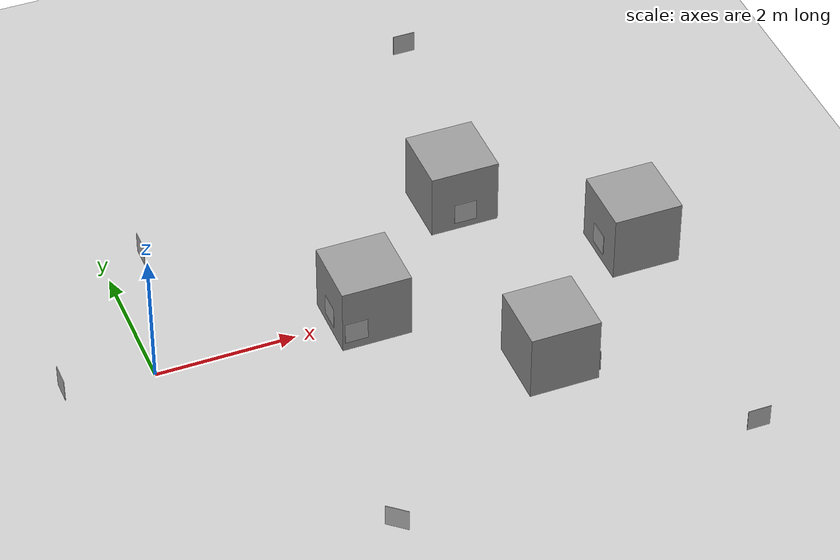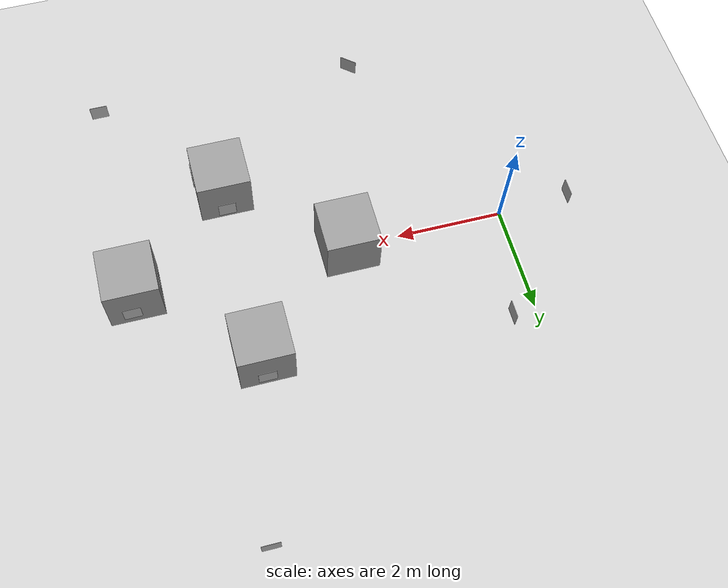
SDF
<sdf version="1.6">
 <world name="default">
  <light name="sun" type="directional">
   <pose>0 0 10 0 -0 0</pose>
   <diffuse>0.8 0.8 0.8 1</diffuse>
   <specular>0.2 0.2 0.2 1</specular>
   <attenuation>
    <range>1000</range>
    <constant>0.9</constant>
    <linear>0.01</linear>
    <quadratic>0.001</quadratic>
   </attenuation>
   <direction>-0.5 0.1 -0.9</direction>
  </light>
  <model name="ground_plane">
   <static>1</static>
   <link name="link">
    <collision name="collision">
     <geometry><plane><normal>0 0 1</normal><size>100 100</size></plane></geometry>
     <surface><friction><ode><mu>100</mu><mu2>50</mu2></ode></friction></surface>
    </collision>
    <visual name="visual">
     <cast_shadows>0</cast_shadows>
     <geometry><plane><normal>0 0 1</normal><size>100 100</size></plane></geometry>
     <material>
      <script><uri>file://media/materials/scripts/gazebo.material</uri><name>Gazebo/Grey</name></script>
     </material>
    </visual>
   </link>
  </model>
  <gravity>0 0 -9.8</gravity>
  <magnetic_field>6e-06 2.3e-05 -4.2e-05</magnetic_field>
  <atmosphere type="adiabatic"/>
  <physics name="default_physics" default="0" type="ode">
   <max_step_size>0.001</max_step_size>
   <real_time_factor>1</real_time_factor>
   <real_time_update_rate>1000</real_time_update_rate>
  </physics>
  <scene><ambient>0.4 0.4 0.4 1</ambient><background>0.7 0.7 0.7 1</background><shadows>1</shadows></scene>
  <audio><device>default</device></audio>
  <spherical_coordinates>
   <surface_model>EARTH_WGS84</surface_model>
   <latitude_deg>0</latitude_deg>
   <longitude_deg>0</longitude_deg>
   <elevation>0</elevation>
   <heading_deg>0</heading_deg>
  </spherical_coordinates>
  <model name="unit_box">
   <pose>3.00001 3e-06 0.5 -0 -0 -5e-06</pose>
   <link name="link">
    <inertial>
     <mass>1</mass>
     <inertia>
      <ixx>0.166667</ixx>
      <ixy>0</ixy>
      <ixz>0</ixz>
      <iyy>0.166667</iyy>
      <iyz>0</iyz>
      <izz>0.166667</izz>
     </inertia>
    </inertial>
    <collision name="collision"><geometry><box><size>1 1 1</size></box></geometry></collision>
    <visual name="visual">
     <geometry><box><size>1 1 1</size></box></geometry>
     <material>
      <script><name>Gazebo/Grey</name><uri>file://media/materials/scripts/gazebo.material</uri></script>
     </material>
    </visual>
   </link>
  </model>
  <model name="unit_box_0">
   <pose>5.00001 1.75001 0.5 -0 -0 -5e-06</pose>
   <link name="link">
    <inertial>
     <mass>1</mass>
     <inertia>
      <ixx>0.166667</ixx>
      <ixy>0</ixy>
      <ixz>0</ixz>
      <iyy>0.166667</iyy>
      <iyz>0</iyz>
      <izz>0.166667</izz>
     </inertia>
    </inertial>
    <collision name="collision"><geometry><box><size>1 1 1</size></box></geometry></collision>
    <visual name="visual">
     <geometry><box><size>1 1 1</size></box></geometry>
     <material>
      <script><name>Gazebo/Grey</name><uri>file://media/materials/scripts/gazebo.material</uri></script>
     </material>
    </visual>
   </link>
  </model>
  <model name="unit_box_1">
   <pose>7.00001 3e-06 0.5 -0 -0 -5e-06</pose>
   <link name="link">
    <inertial>
     <mass>1</mass>
     <inertia>
      <ixx>0.166667</ixx>
      <ixy>0</ixy>
      <ixz>0</ixz>
      <iyy>0.166667</iyy>
      <iyz>0</iyz>
      <izz>0.166667</izz>
     </inertia>
    </inertial>
    <collision name="collision"><geometry><box><size>1 1 1</size></box></geometry></collision>
    <visual name="visual">
     <geometry><box><size>1 1 1</size></box></geometry>
     <material>
      <script><name>Gazebo/Grey</name><uri>file://media/materials/scripts/gazebo.material</uri></script>
     </material>
    </visual>
   </link>
  </model>
  <model name="unit_box_0_clone">
   <pose>5.00001 -1.75002 0.5 -0 -0 -5e-06</pose>
   <link name="link">
    <inertial>
     <mass>1</mass>
     <inertia>
      <ixx>0.166667</ixx>
      <ixy>0</ixy>
      <ixz>0</ixz>
      <iyy>0.166667</iyy>
      <iyz>0</iyz>
      <izz>0.166667</izz>
     </inertia>
    </inertial>
    <collision name="collision"><geometry><box><size>1 1 1</size></box></geometry></collision>
    <visual name="visual">
     <geometry><box><size>1 1 1</size></box></geometry>
     <material>
      <script><name>Gazebo/Grey</name><uri>file://media/materials/scripts/gazebo.material</uri></script>
     </material>
    </visual>
   </link>
  </model>
  <model name="Aruco tag0">
   <static>1</static>
   <link name="robot_link">
    <visual name="front_visual">
     <geometry><box><size>0.33 0.33 0.005</size></box></geometry>
     <material>
      <script>
       <uri>file://tag_0/materials/scripts/</uri>
       <uri>file://tag_0/materials/textures/</uri>
       <name>Aruco/tag0</name>
      </script>
     </material>
    </visual>
    <visual name="rear_visual">
     <pose>0 0 -0.0025 0 -0 -3.14159</pose>
     <geometry><box><size>0.33 0.33 0.005</size></box></geometry>
     <material>
      <script>
       <uri>file://tag_0/materials/scripts/</uri>
       <uri>file://tag_0/materials/textures/</uri>
       <name>Aruco/tag0</name>
      </script>
     </material>
    </visual>
   </link>
   <pose>0.515404 2.15202 0.3 0 -1.57 0</pose>
  </model>
  <model name="Aruco tag1">
   <static>1</static>
   <link name="robot_link">
    <visual name="front_visual">
     <geometry><box><size>0.33 0.33 0.005</size></box></geometry>
     <material>
      <script>
       <uri>file://tag_1/materials/scripts/</uri>
       <uri>file://tag_1/materials/textures/</uri>
       <name>Aruco/tag1</name>
      </script>
     </material>
    </visual>
    <visual name="rear_visual">
     <pose>0 0 -0.0025 0 -0 -3.14159</pose>
     <geometry><box><size>0.33 0.33 0.005</size></box></geometry>
     <material>
      <script>
       <uri>file://tag_1/materials/scripts/</uri>
       <uri>file://tag_1/materials/textures/</uri>
       <name>Aruco/tag1</name>
      </script>
     </material>
    </visual>
   </link>
   <pose>1.93766 -3.92951 0.3 0.870428 -1.57 3.9e-05</pose>
  </model>
  <model name="Aruco tag2">
   <static>1</static>
   <link name="robot_link">
    <visual name="front_visual">
     <geometry><box><size>0.33 0.33 0.005</size></box></geometry>
     <material>
      <script>
       <uri>file://tag_2/materials/scripts/</uri>
       <uri>file://tag_2/materials/textures/</uri>
       <name>Aruco/tag2</name>
      </script>
     </material>
    </visual>
    <visual name="rear_visual">
     <pose>0 0 -0.0025 0 -0 -3.14159</pose>
     <geometry><box><size>0.33 0.33 0.005</size></box></geometry>
     <material>
      <script>
       <uri>file://tag_2/materials/scripts/</uri>
       <uri>file://tag_2/materials/textures/</uri>
       <name>Aruco/tag2</name>
      </script>
     </material>
    </visual>
   </link>
   <pose>7.07479 0.499565 0.299999 -1.55874 -1.57 8.3e-05</pose>
  </model>
  <model name="Aruco tag3">
   <static>1</static>
   <link name="robot_link">
    <visual name="front_visual">
     <geometry><box><size>0.33 0.33 0.005</size></box></geometry>
     <material>
      <script>
       <uri>file://tag_3/materials/scripts/</uri>
       <uri>file://tag_3/materials/textures/</uri>
       <name>Aruco/tag3</name>
      </script>
     </material>
    </visual>
    <visual name="rear_visual">
     <pose>0 0 -0.0025 0 -0 -3.14159</pose>
     <geometry><box><size>0.33 0.33 0.005</size></box></geometry>
     <material>
      <script>
       <uri>file://tag_3/materials/scripts/</uri>
       <uri>file://tag_3/materials/textures/</uri>
       <name>Aruco/tag3</name>
      </script>
     </material>
    </visual>
   </link>
   <pose>4.9983 1.22035 0.299999 1.56557 -1.57 9.1e-05</pose>
  </model>
  <model name="Aruco tag4">
   <static>1</static>
   <link name="robot_link">
    <visual name="front_visual">
     <geometry><box><size>0.33 0.33 0.005</size></box></geometry>
     <material>
      <script>
       <uri>file://tag_4/materials/scripts/</uri>
       <uri>file://tag_4/materials/textures/</uri>
       <name>Aruco/tag4</name>
      </script>
     </material>
    </visual>
    <visual name="rear_visual">
     <pose>0 0 -0.0025 0 -0 -3.14159</pose>
     <geometry><box><size>0.33 0.33 0.005</size></box></geometry>
     <material>
      <script>
       <uri>file://tag_4/materials/scripts/</uri>
       <uri>file://tag_4/materials/textures/</uri>
       <name>Aruco/tag4</name>
      </script>
     </material>
    </visual>
   </link>
   <pose>7 -4 0.3 0 -1.57 -1.57</pose>
  </model>
  <model name="Aruco tag5">
   <static>1</static>
   <link name="robot_link">
    <visual name="front_visual">
     <geometry><box><size>0.33 0.33 0.005</size></box></geometry>
     <material>
      <script>
       <uri>file://tag_5/materials/scripts/</uri>
       <uri>file://tag_5/materials/textures/</uri>
       <name>Aruco/tag5</name>
      </script>
     </material>
    </visual>
    <visual name="rear_visual">
     <pose>0 0 -0.0025 0 -0 -3.14159</pose>
     <geometry><box><size>0.33 0.33 0.005</size></box></geometry>
     <material>
      <script>
       <uri>file://tag_5/materials/scripts/</uri>
       <uri>file://tag_5/materials/textures/</uri>
       <name>Aruco/tag5</name>
      </script>
     </material>
    </visual>
   </link>
   <pose>5.6 5.1 0.3 -1.5704 0 0</pose>
  </model>
  <model name="Aruco tag6">
   <static>1</static>
   <link name="robot_link">
    <visual name="front_visual">
     <geometry><box><size>0.33 0.33 0.005</size></box></geometry>
     <material>
      <script>
       <uri>file://tag_6/materials/scripts/</uri>
       <uri>file://tag_6/materials/textures/</uri>
       <name>Aruco/tag6</name>
      </script>
     </material>
    </visual>
    <visual name="rear_visual">
     <pose>0 0 -0.0025 0 -0 -3.14159</pose>
     <geometry><box><size>0.33 0.33 0.005</size></box></geometry>
     <material>
      <script>
       <uri>file://tag_6/materials/scripts/</uri>
       <uri>file://tag_6/materials/textures/</uri>
       <name>Aruco/tag6</name>
      </script>
     </material>
    </visual>
   </link>
   <pose>5 -1.2 0.3 -1.57 0 0</pose>
  </model>
  <model name="Aruco tag7">
   <static>1</static>
   <link name="robot_link">
    <visual name="front_visual">
     <geometry><box><size>0.33 0.33 0.005</size></box></geometry>
     <material>
      <script>
       <uri>file://tag_7/materials/scripts/</uri>
       <uri>file://tag_7/materials/textures/</uri>
       <name>Aruco/tag7</name>
      </script>
     </material>
    </visual>
    <visual name="rear_visual">
     <pose>0 0 -0.0025 0 -0 -3.14159</pose>
     <geometry><box><size>0.33 0.33 0.005</size></box></geometry>
     <material>
      <script>
       <uri>file://tag_7/materials/scripts/</uri>
       <uri>file://tag_7/materials/textures/</uri>
       <name>Aruco/tag7</name>
      </script>
     </material>
    </visual>
   </link>
   <pose>-1.3 0 0.3 0 -1.57 0</pose>
  </model>
  <model name="Aruco tag8">
   <static>1</static>
   <link name="robot_link">
    <visual name="front_visual">
     <geometry><box><size>0.33 0.33 0.005</size></box></geometry>
     <material>
      <script>
       <uri>file://tag_8/materials/scripts/</uri>
       <uri>file://tag_8/materials/textures/</uri>
       <name>Aruco/tag8</name>
      </script>
     </material>
    </visual>
    <visual name="rear_visual">
     <pose>0 0 -0.0025 0 -0 -3.14159</pose>
     <geometry><box><size>0.33 0.33 0.005</size></box></geometry>
     <material>
      <script>
       <uri>file://tag_8/materials/scripts/</uri>
       <uri>file://tag_8/materials/textures/</uri>
       <name>Aruco/tag8</name>
      </script>
     </material>
    </visual>
   </link>
   <pose>2.5 0 0.3 0 -1.57 0</pose>
  </model>
  <model name="Aruco tag10">
   <static>1</static>
   <link name="robot_link">
    <visual name="front_visual">
     <geometry><box><size>0.33 0.33 0.005</size></box></geometry>
     <material>
      <script>
       <uri>file://tag_10/materials/scripts/</uri>
       <uri>file://tag_10/materials/textures/</uri>
       <name>Aruco/tag10</name>
      </script>
     </material>
    </visual>
    <visual name="rear_visual">
     <pose>0 0 -0.0025 0 -0 -3.14159</pose>
     <geometry><box><size>0.33 0.33 0.005</size></box></geometry>
     <material>
      <script>
       <uri>file://tag_10/materials/scripts/</uri>
       <uri>file://tag_10/materials/textures/</uri>
       <name>Aruco/tag10</name>
      </script>
     </material>
    </visual>
   </link>
   <pose>5.51175 -2.08643 0.3 0 -1.57 0.000201</pose>
  </model>
  <model name="Aruco tag11">
   <static>1</static>
   <link name="robot_link">
    <visual name="front_visual">
     <geometry><box><size>0.33 0.33 0.005</size></box></geometry>
     <material>
      <script>
       <uri>file://tag_11/materials/scripts/</uri>
       <uri>file://tag_11/materials/textures/</uri>
       <name>Aruco/tag11</name>
      </script>
     </material>
    </visual>
    <visual name="rear_visual">
     <pose>0 0 -0.0025 0 -0 -3.14159</pose>
     <geometry><box><size>0.33 0.33 0.005</size></box></geometry>
     <material>
      <script>
       <uri>file://tag_11/materials/scripts/</uri>
       <uri>file://tag_11/materials/textures/</uri>
       <name>Aruco/tag11</name>
      </script>
     </material>
    </visual>
   </link>
   <pose>2.7 -0.5 0.3 -1.57 -1.57 0</pose>
  </model>
  <model name="Aruco tag12">
   <static>1</static>
   <link name="robot_link">
    <visual name="front_visual">
     <geometry><box><size>0.33 0.33 0.005</size></box></geometry>
     <material>
      <script>
       <uri>file://tag_12/materials/scripts/</uri>
       <uri>file://tag_12/materials/textures/</uri>
       <name>Aruco/tag12</name>
      </script>
     </material>
    </visual>
    <visual name="rear_visual">
     <pose>0 0 -0.0025 0 -0 -3.14159</pose>
     <geometry><box><size>0.33 0.33 0.005</size></box></geometry>
     <material>
      <script>
       <uri>file://tag_12/materials/scripts/</uri>
       <uri>file://tag_12/materials/textures/</uri>
       <name>Aruco/tag12</name>
      </script>
     </material>
    </visual>
   </link>
   <pose>5.00814 2.26528 0.3 2.4e-05 -1.57 -1.57002</pose>
  </model>
  <model name="Aruco tag13">
   <static>1</static>
   <link name="robot_link">
    <visual name="front_visual">
     <geometry><box><size>0.33 0.33 0.005</size></box></geometry>
     <material>
      <script>
       <uri>file://tag_13/materials/scripts/</uri>
       <uri>file://tag_13/materials/textures/</uri>
       <name>Aruco/tag13</name>
      </script>
     </material>
    </visual>
    <visual name="rear_visual">
     <pose>0 0 -0.0025 0 -0 -3.14159</pose>
     <geometry><box><size>0.33 0.33 0.005</size></box></geometry>
     <material>
      <script>
       <uri>file://tag_13/materials/scripts/</uri>
       <uri>file://tag_13/materials/textures/</uri>
       <name>Aruco/tag13</name>
      </script>
     </material>
    </visual>
   </link>
   <pose>6.49816 0.008355 0.3 0 1.57 0</pose>
  </model>
 </world>
</sdf>
